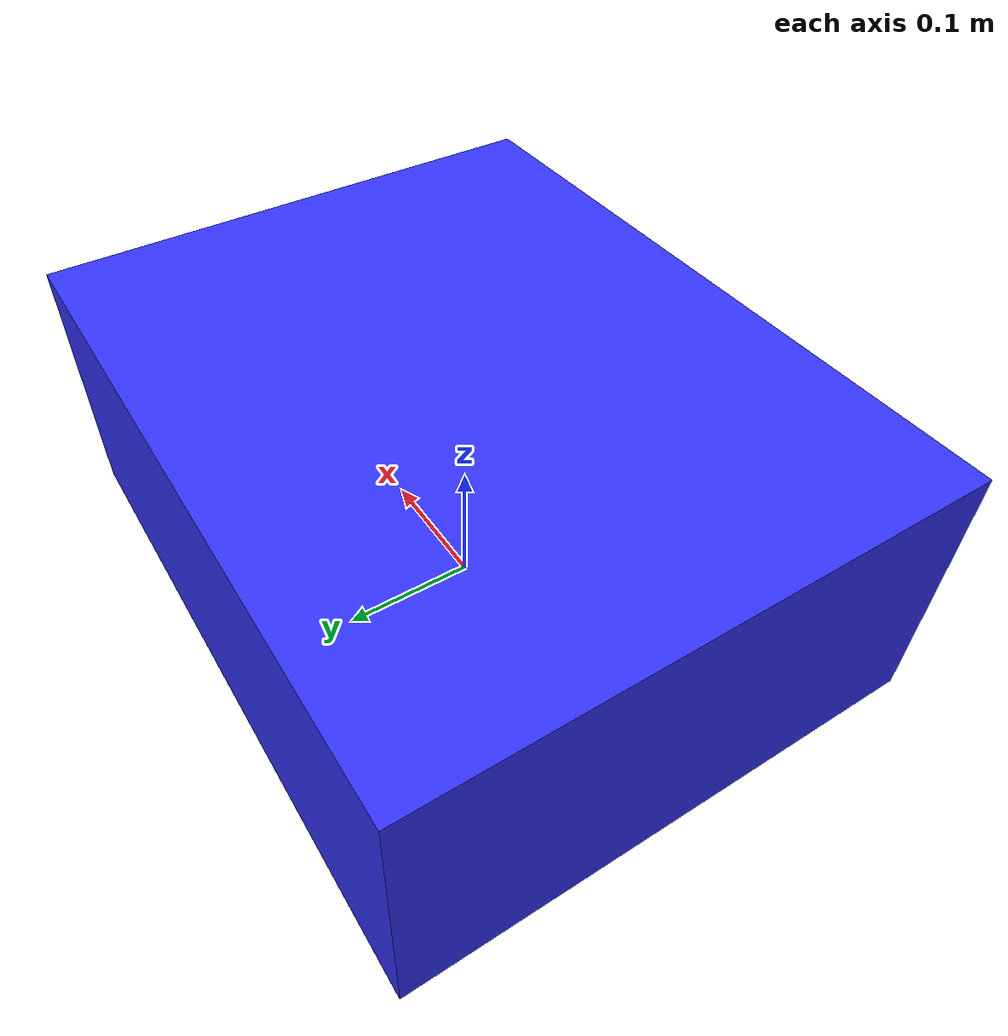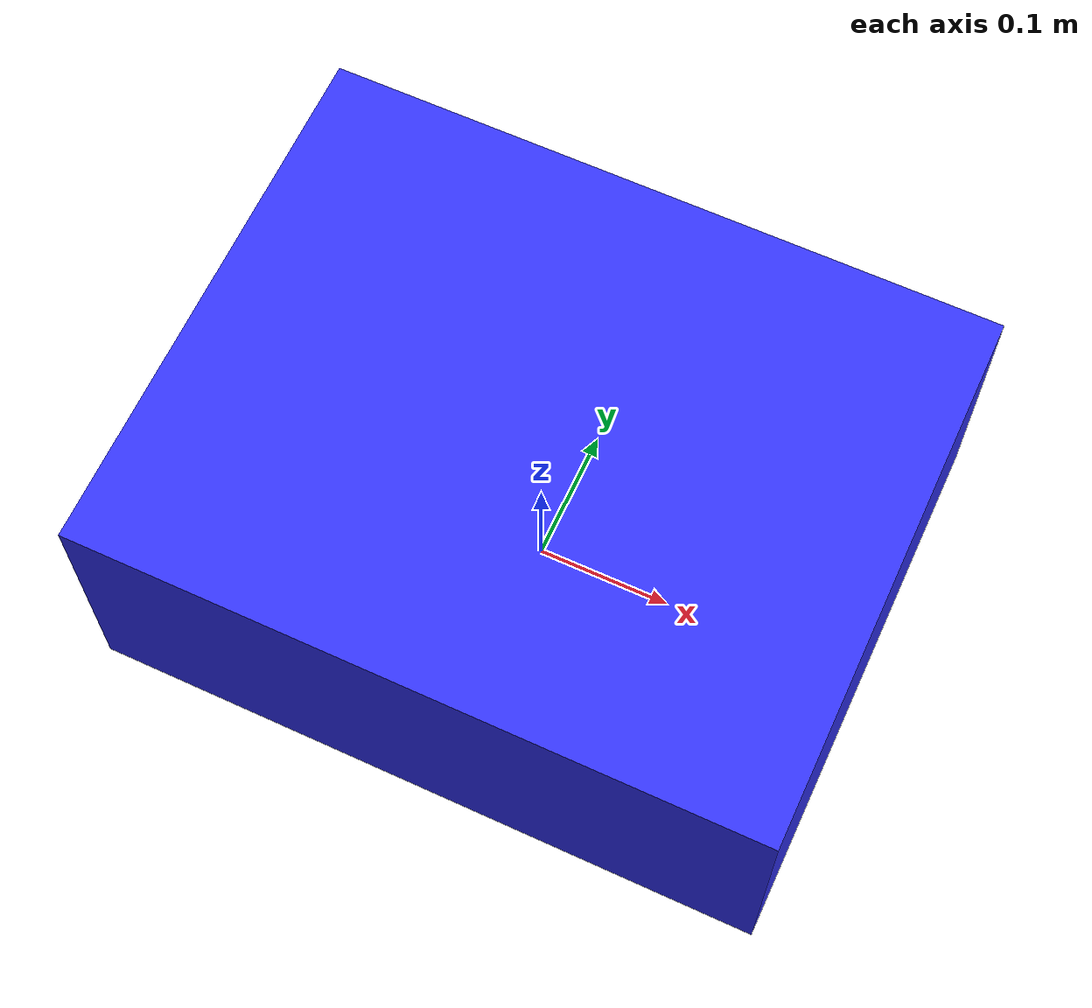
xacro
<?xml version="1.0"?>
<robot xmlns:xacro="http://www.ros.org/wiki/xacro" >

    <link name="base_footprint"/>

    <link name="base_link">
        <visual>
            <geometry>
                <box size="0.5 0.4 0.2"/>
            </geometry>
            <material name="blue">
                <color rgba="0.2 0.2 1 1"/>
            </material>
        </visual>
        <collision>
            <geometry>
                <box size="0.5 0.4 0.2"/>
            </geometry>
        </collision>
        </link>

    <joint name="base_joint" type="fixed">
        <parent link="base_footprint"/>
        <child link="base_link"/>
        <origin xyz="0 0 0.1" rpy="0 0 0"/>
    </joint>

</robot>
